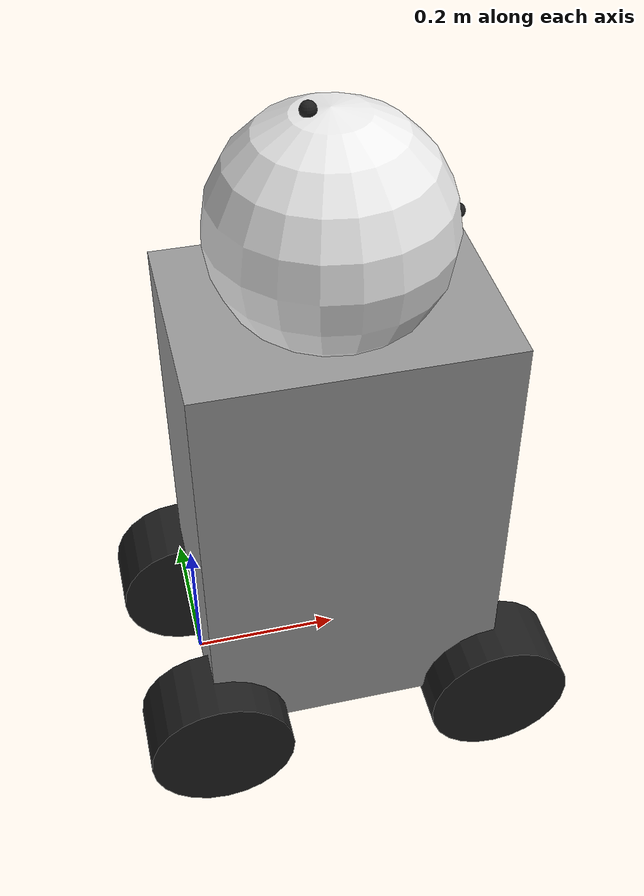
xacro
<?xml version="1.0"?>

<robot name="butler_robot" xmlns:xacro = "http://www.ros.org/wiki/xacro">

<!-- Body Dimensions-->
<xacro:property name="body_link_x_dim" value="0.4"/>
<xacro:property name="body_link_y_dim" value="0.3"/>
<xacro:property name="body_link_z_dim" value="0.6"/>

<!-- Wheel Dimensions-->
<xacro:property name="wheel_link_radius" value="0.10"/>
<xacro:property name="wheel_link_length" value="0.1"/>
<xacro:property name="wheel_link_z_location" value="-0.30"/>

<!-- Head Dimensions-->
<xacro:property name="head_link_radius" value="0.15"/>
<xacro:property name="head_link_z_location" value="0.40"/>

<!-- Plate Dimensions-->
<xacro:property name="plate_link_x_dim" value="0.15"/>
<xacro:property name="plate_link_y_dim" value="1.0"/>
<xacro:property name="plate_link_z_dim" value="0.4"/>
<xacro:property name="plate_link_z_location" value="1.5"/>

<!-- Material Density-->
<xacro:property name="body_density" value="2710.0"/>
<xacro:property name="wheel_density" value="2710.0"/>
<xacro:property name="head_density" value="2710.0"/>
<xacro:property name="plate_density" value="2710.0"/>

<!-- Standard Pi Constant-->
<xacro:property name="pi_const" value="3.14159265"/>

<!-- Mass of the robot-->
<xacro:property name="body_mass" value="${body_density*body_link_x_dim*body_link_y_dim*body_link_z_dim}"/>
<xacro:property name="plate_mass" value="${plate_density*plate_link_x_dim*plate_link_y_dim*plate_link_z_dim}"/>
<xacro:property name="wheel_mass" value="${wheel_density*pi_const*wheel_link_radius*wheel_link_length}"/>
<xacro:property name="head_mass" value="${head_density*(4.0/3.0)*pi_const*head_link_radius*head_link_radius*head_link_radius}"/>

<!-- Moment of Inertia Wheel -->
<xacro:property name="Iz_wheel" value="${0.5*wheel_mass*wheel_link_radius*wheel_link_radius}"/>
<xacro:property name="I_wheel" value="${(1.0/12.0)*wheel_mass*(3.0*wheel_link_radius*wheel_link_radius+wheel_link_length*wheel_link_length)}"/>

<!-- Moment of head -->
<xacro:property name="I_head" value="${(2.0/5.0)*head_mass*head_link_radius*head_link_radius}"/>

<!-- Interial section of wheel-->
<xacro:macro name = "inertal_wheel">
    <inertial>
    <origin rpy = "0 0 0" xyz = "0 0 0"/>
    <mass value = "${wheel_mass}"/>
    <inertia ixx = "${I_wheel}" ixy="0.0" ixz = '0.0' iyy="${I_wheel}" iyz="0.0" izz="${Iz_wheel}"/>
    </inertial>
</xacro:macro>

<!-- Interial section of head-->
<xacro:macro name = "inertal_head">
    <inertial>
    <origin rpy = "0 0 0" xyz = "0 0 0"/>
    <mass value = "${head_mass}"/>
    <inertia ixx = "${I_head}" ixy="0.0" ixz = '0.0' iyy="${I_head}" iyz="0.0" izz="${I_head}"/>
    </inertial>
</xacro:macro>

<!-- Include a file defining the Gazebo options and motion control driver-->
<xacro:include filename="$(find butler_robot)/model/robot.gazebo"/>

<!-- Base Link-->

<link name="base_link"/>

<!-- Body Joint-->
<joint name = "body_joint" type='fixed'>
    <origin xyz = "${body_link_x_dim/2} 0 ${body_link_z_dim/2}" rpy='0 0 0'/>
    <parent link = "base_link"/>
    <child link = "body_link"/>
</joint>

<!-- Body Link-->
<link name = 'body_link'>
    <visual>
        <geometry>
            <box size = "${body_link_x_dim} ${body_link_y_dim} ${body_link_z_dim}"/>
        </geometry>
    <orgin rpy = "0 0 0" xyz = "0 0 0"/>
    </visual>
    <collision>
        <geometry>
            <box size = "${body_link_x_dim} ${body_link_y_dim} ${body_link_z_dim}"/>
        </geometry>
    <orgin rpy = "0 0 0" xyz = "0 0 0"/>
    </collision>

    <inertial>
        <orgin rpy = "0 0 0" xyz = "0 0 0"/>
        <mass value = "${body_mass}"/>
        <inertia
        ixx = "${(1/12)*body_mass*(body_link_y_dim*body_link_y_dim+body_link_z_dim*body_link_z_dim)}" ixy="0"  ixz="0"  iyz="0"
        iyy = "${(1/12)*body_mass*(body_link_x_dim*body_link_x_dim+body_link_z_dim*body_link_z_dim)}"
        izz = "${(1/12)*body_mass*(body_link_y_dim*body_link_y_dim+body_link_x_dim*body_link_x_dim)}"/>
    </inertial>
</link>

<!--Front Right Wheel-->
<joint name = "front_wheel1_joint" type = "continuous">
    <parent link = "base_link"/>
    <child link = "front_wheel1_link"/>
    <origin xyz = "${body_link_x_dim} -${body_link_y_dim/2} 0" rpy = "${pi_const/2} 0 0"/>
    <axis xyz = "0 0 -1"/>
    <limit effort = "1000" velocity = "1000"/>
    <dynamics damping = "1.0" friction = "1.0"/>
</joint>

<link name = "front_wheel1_link">
    <visual>
        <geometry>
        <cylinder radius = "${wheel_link_radius}" length = "${wheel_link_length}"/>
        </geometry>
    </visual>
    <collision>
        <geometry>
        <cylinder radius = "${wheel_link_radius}" length = "${wheel_link_length}"/>
        </geometry>
    </collision>

    <xacro:inertal_wheel />
</link>

<!--Rear Right Wheel-->
<joint name = "rear_wheel1_joint" type = "continuous">
    <parent link = "base_link"/>
    <child link = "rear_wheel1_link"/>
    <origin xyz = "0 -${body_link_y_dim/2} 0" rpy = "${pi_const/2} 0 0"/>
    <axis xyz = "0 0 -1"/>
    <limit effort = "1000" velocity = "1000"/>
    <dynamics damping = "1.0" friction = "1.0"/>
</joint>

<link name = "rear_wheel1_link">
    <visual>
        <geometry>
        <cylinder radius = "${wheel_link_radius}" length = "${wheel_link_length}"/>
        </geometry>
    </visual>
    <collision>
        <geometry>
        <cylinder radius = "${wheel_link_radius}" length = "${wheel_link_length}"/>
        </geometry>
    </collision>

    <xacro:inertal_wheel />
</link>

<!--Front left Wheel-->
<joint name = "front_wheel2_joint" type = "continuous">
    <parent link = "base_link"/>
    <child link = "front_wheel2_link"/>
    <origin xyz = "${body_link_x_dim} ${body_link_y_dim/2} 0" rpy = "-${pi_const/2} 0 0"/>
    <axis xyz = "0 0 1"/>
    <limit effort = "1000" velocity = "1000"/>
    <dynamics damping = "1.0" friction = "1.0"/>
</joint>

<link name = "front_wheel2_link">
    <visual>
        <geometry>
        <cylinder radius = "${wheel_link_radius}" length = "${wheel_link_length}"/>
        </geometry>
    </visual>
    <collision>
        <geometry>
        <cylinder radius = "${wheel_link_radius}" length = "${wheel_link_length}"/>
        </geometry>
    </collision>

    <xacro:inertal_wheel />
</link>

<!--Rear Left Wheel-->
<joint name = "rear_wheel2_joint" type = "continuous">
    <parent link = "base_link"/>
    <child link = "rear_wheel2_link"/>
    <origin xyz = "0 ${body_link_y_dim/2} 0" rpy = "-${pi_const/2} 0 0"/>
    <axis xyz = "0 0 1"/>
    <limit effort = "1000" velocity = "1000"/>
    <dynamics damping = "1.0" friction = "1.0"/>
</joint>

<link name = "rear_wheel2_link">
    <visual>
        <geometry>
        <cylinder radius = "${wheel_link_radius}" length = "${wheel_link_length}"/>
        </geometry>
    </visual>
    <collision>
        <geometry>
        <cylinder radius = "${wheel_link_radius}" length = "${wheel_link_length}"/>
        </geometry>
    </collision>

    <xacro:inertal_wheel />
</link>

<!-- Head -->
<joint name = "head_joint" type = "fixed">
    <parent link = "body_link"/>
    <child link = "head_link"/>
    <origin xyz = "0 0 ${head_link_z_location}" rpy = "0 0 0"/>
</joint>

<link name = "head_link">
    <visual>
        <origin rpy = "0 0 0" xyz = "0 0 0"/>
        <geometry>
        <sphere radius = "${head_link_radius}"/>
        </geometry>
    </visual>
    <collision>
        <origin rpy = "0 0 0" xyz = "0 0 0"/>
        <geometry>
        <sphere radius = "${head_link_radius}"/>
        </geometry>
    </collision>

    <xacro:inertal_head/>
</link>

<!-- Lidar Frame-->
<joint name = "lidar_joint" type = "fixed">
    <parent link = "head_link"/>
    <child link = "base_scan"/>
    <origin xyz = "${-head_link_radius/6} 0 ${head_link_radius}" rpy = "0 0 0"/>
</joint>

<link name = "base_scan">
    <visual>
        <origin rpy = "0 0 0" xyz = "0 0 0"/>
        <geometry>
        <sphere radius = "0.01"/>
        </geometry>
    </visual>
    <collision>
        <origin rpy = "0 0 0" xyz = "0 0 0"/>
        <geometry>
        <sphere radius = "0.01"/>
        </geometry>
    </collision>
    <xacro:inertal_head/>
</link>

<!-- Lidar Sensor -->
<gazebo reference = 'base_scan'>
    <sensor type='ray' name='lidar_sensor'>
        <pose>0 0 0 0 0 0</pose>
        <visualize>true</visualize>
        <update_rate>10</update_rate>
        <ray>
            <scan>
                <horizontal>
                    <samples>320</samples>
                    <resolution>1</resolution>
                    <min_angle>-3.14</min_angle>
                    <max_angle>3.14</max_angle>
                </horizontal>
            </scan>
            <range>
                <min>0.3</min>
                <max>15</max>
                <resolution>0.01</resolution>
            </range>
        </ray>
        <plugin name="laser_scan" filename="libgazebo_ros_ray_sensor.so">
          <ros>
            <remapping>~/out:=scan</remapping>
          </ros>
          <output_type>sensor_msgs/LaserScan</output_type>
          <frame_name>base_scan</frame_name>
        </plugin>
    </sensor>
</gazebo>

<!-- Camera Frame-->
<joint name = "camera_joint" type = "fixed">
    <parent link = "head_link"/>
    <child link = "camera_frame"/>
    <origin xyz = "${head_link_radius} 0 0" rpy = "0 0 0"/>
</joint>

<link name = "camera_frame">
    <visual>
        <origin rpy = "0 0 0" xyz = "0 0 0"/>
        <geometry>
        <sphere radius = "0.01"/>
        </geometry>
    </visual>
    <collision>
        <origin rpy = "0 0 0" xyz = "0 0 0"/>
        <geometry>
        <sphere radius = "0.01"/>
        </geometry>
    </collision>
    <xacro:inertal_head/>
</link>

<!-- Camera Sensor -->
<gazebo reference = 'camera_frame'>
<sensor name = "camera" type="camera">
    <pose> 0.5 0 0.25 0 0.7 1.9707</pose>
    <visualize>true</visualize>
    <update_rate>5</update_rate>
    <camera>
        <horizontal_fov>1</horizontal_fov>
        <image>
            <format>R8G8B8</format>
            <width>640</width>
            <height>480</height>
        </image>
        <clip>
            <near>0.05</near>
            <far>1000</far>
        </clip>
    </camera>
    <plugin name = "camera_controller" filename = "libgazebo_ros_camera.so">
        <frame_name>camera_frame</frame_name>
    </plugin>
</sensor>
</gazebo>

<!-- IMU Frame-->
<joint name = "IMU_joint" type = "fixed">
    <parent link = "head_link"/>
    <child link = "IMU_frame"/>
    <origin xyz = "0 ${head_link_radius} 0" rpy = "0 0 0"/>
</joint>

<link name = "IMU_frame">
    <visual>
        <origin rpy = "0 0 0" xyz = "0 0 0"/>
        <geometry>
        <sphere radius = "0.01"/>
        </geometry>
    </visual>
    <collision>
        <origin rpy = "0 0 0" xyz = "0 0 0"/>
        <geometry>
        <sphere radius = "0.01"/>
        </geometry>
    </collision>
    <xacro:inertal_head/>
</link>

<!-- IMU Sensor -->
<gazebo reference = 'IMU_frame'>
 <sensor name="imu_sensor" type="imu">
    <pose>0 0 0.1 0 0 0</pose>
    <update_rate>100</update_rate>
    <imu>
      <angular_velocity>
        <noise type="gaussian">
          <mean>0</mean>
          <stddev>0.02</stddev>
        </noise>
      </angular_velocity>
      <linear_acceleration>
        <noise type="gaussian">
          <mean>0</mean>
          <stddev>0.02</stddev>
        </noise>
      </linear_acceleration>
    </imu>
    <plugin name="imu_plugin" filename="libgazebo_ros_imu_sensor.so">
        <frame_name>IMU_frame</frame_name>
        <ros>
          <namespace>/</namespace>
          <remapping>imu/data_raw:=/imu/data</remapping>
        </ros>
        <update_rate>100</update_rate>
        <bias_correction>true</bias_correction>
        <gaussian_noise>0.001</gaussian_noise>
      </plugin>
  </sensor>
</gazebo>

</robot>
